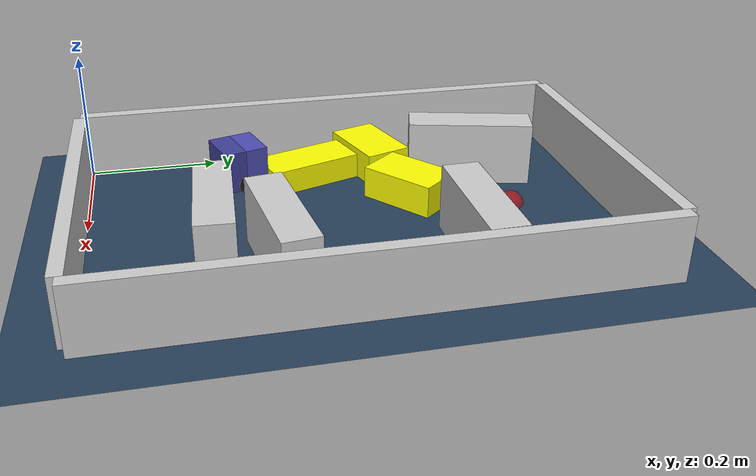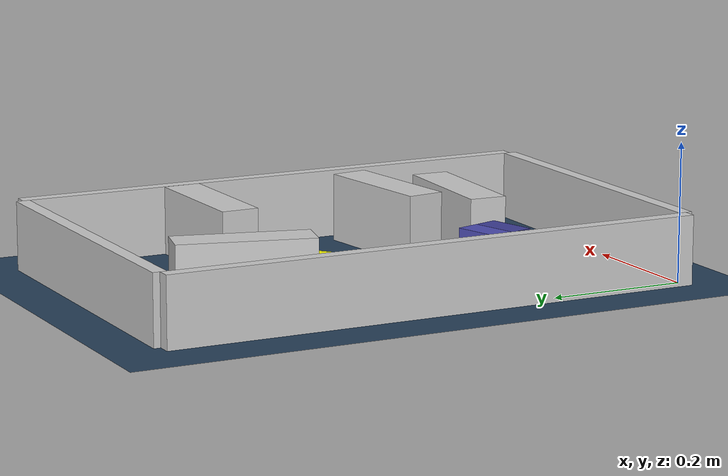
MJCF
<?xml version='1.0' encoding='utf-8'?>
<mujoco model="real_buildable">
  <compiler angle="degree" />
  <option timestep="0.002" integrator="implicitfast" iterations="100" cone="elliptic" />
  <default>
    <geom density="1" />
  </default>
  <asset>
    <texture builtin="gradient" height="3072" rgb1="0.3 0.5 0.7" rgb2="0 0 0" type="skybox" width="512" />
    <texture builtin="checker" height="300" mark="edge" markrgb="0.8 0.8 0.8" name="groundplane" rgb1="0.2 0.3 0.4" rgb2="0.1 0.2 0.3" type="2d" width="300" />
    <material name="groundplane" reflectance="0.2" texrepeat="5 5" texture="groundplane" texuniform="true" />
  </asset>
  <worldbody>
    <light dir="0 0 -1" directional="true" pos="0 0 1.5" />
    <geom name="floor" type="plane" condim="4" friction="0.5 0.005 0.001" material="groundplane" size="0 0 0.05" />
    <body name="walls">
      <geom name="wall_boundary_left" type="box" condim="4" friction="1.0 0.005 0.0001" rgba="0.8 0.8 0.8 1" pos="-0.010000 0.387500 0.050000" euler="0 0 0.000000" size="0.010000 0.397500 0.050000" />
      <geom name="wall_boundary_right" type="box" condim="4" friction="1.0 0.005 0.0001" rgba="0.8 0.8 0.8 1" pos="0.500000 0.387500 0.050000" euler="0 0 0.000000" size="0.010000 0.397500 0.050000" />
      <geom name="wall_boundary_bottom" type="box" condim="4" friction="1.0 0.005 0.0001" rgba="0.8 0.8 0.8 1" pos="0.245000 -0.010000 0.050000" euler="0 0 0.000000" size="0.245000 0.010000 0.050000" />
      <geom name="wall_boundary_top" type="box" condim="4" friction="1.0 0.005 0.0001" rgba="0.8 0.8 0.8 1" pos="0.245000 0.785000 0.050000" euler="0 0 0.000000" size="0.245000 0.010000 0.050000" />
      <geom name="wall_inner_1" type="box" condim="4" friction="1.0 0.005 0.0001" rgba="0.8 0.8 0.8 1" pos="0.307452 0.181307 0.050000" euler="0 0 -3.001577" size="0.097500 0.027500 0.050000" />
      <geom name="wall_inner_2" type="box" condim="4" friction="1.0 0.005 0.0001" rgba="0.8 0.8 0.8 1" pos="0.369012 0.266334 0.050000" euler="0 0 7.505534" size="0.097500 0.027500 0.050000" />
      <geom name="wall_inner_3" type="box" condim="4" friction="1.0 0.005 0.0001" rgba="0.8 0.8 0.8 1" pos="0.392000 0.538000 0.050000" euler="0 0 1.000000" size="0.097500 0.027500 0.050000" />
      <geom name="wall_inner_4" type="box" condim="4" friction="1.0 0.005 0.0001" rgba="0.8 0.8 0.8 1" pos="0.135000 0.605000 0.050000" euler="0 0 75.800000" size="0.097500 0.027500 0.050000" />
    </body>
    <body name="car" pos="0.10993701721913313 0.23273138836204163 0.01" quat="0.59735021251337805 0 0 0.80198050076683414">
      <freejoint name="car_freejoint" />
      <inertial pos="0 0 0.0375" mass="0.35" diaginertia="0.000266 0.000266 0.000286" />
      <geom name="front_chassis_collision" type="box" pos="0.0175 0 0.0375" size="0.0175 0.035 0.0325" rgba="0.3 0.3 0.7 1" />
      <geom name="rear_chassis_collision" type="box" pos="-0.0175 0 0.0375" size="0.0175 0.035 0.0325" rgba="0.25 0.25 0.6 1" />
      <geom name="front_marker" type="box" pos="0.034 0 0.0505" size="0.002 0.015 0.01" rgba="1 0.2 0.2 1" contype="0" conaffinity="0" />
      <body name="rear_support_body" pos="-0.03 0 0.0025">
        <joint name="rear_caster_joint" type="ball" damping="0.0001" />
        <inertial pos="0 0 0" mass="0.025" diaginertia="0.000001 0.000001 0.000001" />
        <geom name="rear_support" type="sphere" pos="0 0 0" size="0.0025" friction="0 0 0" rgba="0.7 0.1 0.1 1" />
      </body>
      <body name="front_support_body" pos="0.03 0 0.0025">
        <joint name="front_caster_joint" type="ball" damping="0.0001" />
        <inertial pos="0 0 0" mass="0.025" diaginertia="0.000001 0.000001 0.000001" />
        <geom name="front_support" type="sphere" pos="0 0 0" size="0.0025" friction="0 0 0" rgba="0.1 0.7 0.1 1" />
      </body>
      <body name="left_wheel" pos="0 0.0375 0.015">
        <inertial pos="0 0 0" mass="0.05" diaginertia="0.000003 0.000006 0.000003" />
        <joint name="left_wheel_joint" type="hinge" axis="0 1 0" damping="0.01" armature="0.0001" />
        <geom name="left_wheel_collision" type="cylinder" size="0.015 0.0005" euler="90 0 0" rgba="0.1 0.1 0.1 1" />
      </body>
      <body name="right_wheel" pos="0 -0.0375 0.015">
        <inertial pos="0 0 0" mass="0.05" diaginertia="0.000003 0.000006 0.000003" />
        <joint name="right_wheel_joint" type="hinge" axis="0 1 0" damping="0.01" armature="0.0001" />
        <geom name="right_wheel_collision" type="cylinder" size="0.015 0.0005" euler="90 0 0" rgba="0.1 0.1 0.1 1" />
      </body>
    </body>
    <body name="obstacle_0_movable">
      <geom name="obstacle_0_movable" condim="4" pos="0.092307545674426977 0.34501772476721704 0.02" friction="1 0.005 0.0001" rgba="1 1 0 1" size="0.035000 0.075000 0.020000" type="box" mass="0.1" quat="0.98696256289791151 0 0 0.16094999048768585" />
      <joint type="free" />
    </body>
    <body name="obstacle_1_movable">
      <geom name="obstacle_1_movable" condim="4" pos="0.19599999999999995 0.48999999999999955 0.025000000000000001" friction="1 0.005 0.0001" rgba="1 1 0 1" size="0.037500 0.060000 0.025000" type="box" mass="0.1" quat="0.90556879901113962 0 0 -0.42419942274539019" />
      <joint type="free" />
    </body>
    <body name="obstacle_2_movable">
      <geom name="obstacle_2_movable" condim="4" pos="0.068575228936755467 0.45554151272874827 0.025000000000000001" friction="1 0.005 0.0001" rgba="1 1 0 1" size="0.037500 0.060000 0.025000" type="box" mass="0.1" quat="0.58529367916654851 0 0 0.81082137929860076" />
      <joint type="free" />
    </body>
    <site name="goal" type="sphere" pos="0.245000 0.640000 0.0" size="0.02" rgba="1 0 0 0.5" />
  </worldbody>
  <actuator>
    <velocity name="left_wheel_drive" joint="left_wheel_joint" ctrlrange="-25 25" kv="0.75" forcerange="-0.5 0.5" />
    <velocity name="right_wheel_drive" joint="right_wheel_joint" ctrlrange="-25 25" kv="0.75" forcerange="-0.5 0.5" />
  </actuator>
</mujoco>
